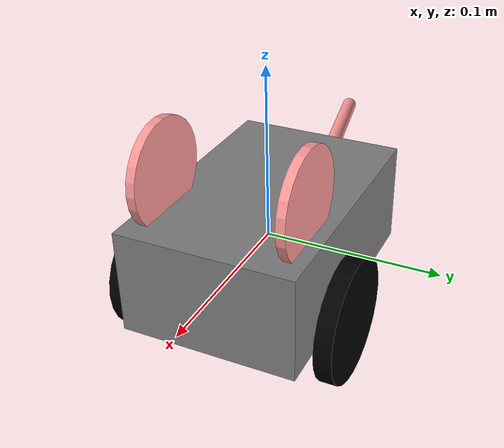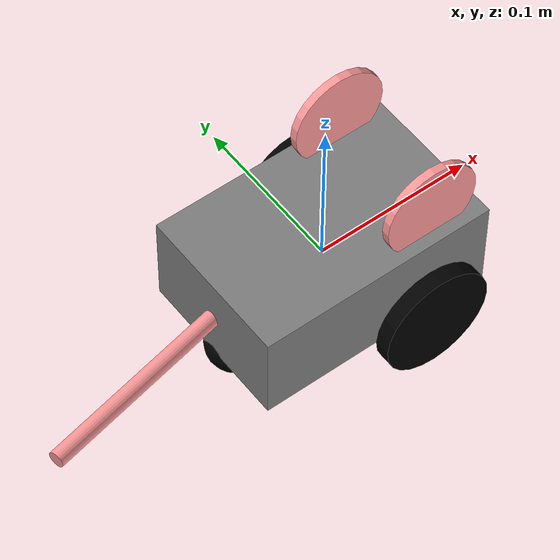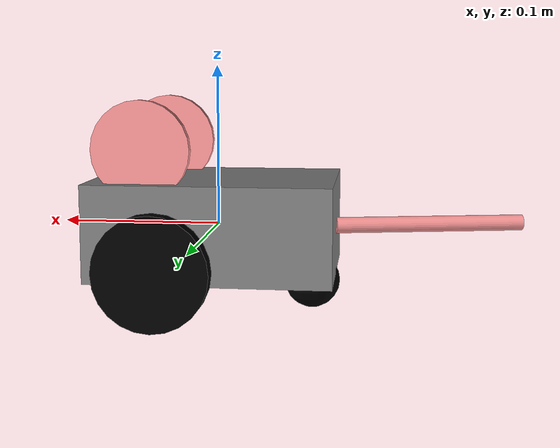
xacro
<?xml version="1.0"?>
<robot name="squeak_mouse" xmlns:xacro="http://www.ros.org/wiki/xacro">

    <xacro:property name="body_len" value="0.15"/>
    <xacro:property name="body_width" value="0.10"/>
    <xacro:property name="body_height" value="0.06"/>
    <xacro:property name="body_mass" value="0.5"/>

    <xacro:property name="wheel_radius" value="0.035"/>
    <xacro:property name="wheel_width" value="0.01"/>
    <xacro:property name="wheel_mass" value="0.1"/>

    <material name="grey">
        <color rgba="0.5 0.5 0.5 1"/>
    </material>
    <material name="pink">
        <color rgba="1 0.6 0.6 1"/> </material>
    <material name="black">
        <color rgba="0 0 0 1"/>
    </material>

    <xacro:macro name="box_inertia" params="m x y z">
        <inertial>
            <mass value="${m}"/>
            <inertia ixx="${m*(y*y+z*z)/12}" ixy="0" ixz="0"
                     iyy="${m*(x*x+z*z)/12}" iyz="0"
                     izz="${m*(x*x+y*y)/12}"/>
        </inertial>
    </xacro:macro>

    <xacro:macro name="cylinder_inertia" params="m r h">
        <inertial>
            <mass value="${m}"/>
            <inertia ixx="${m*(3*r*r+h*h)/12}" ixy="0" ixz="0"
                     iyy="${m*(3*r*r+h*h)/12}" iyz="0"
                     izz="${m*r*r/2}"/>
        </inertial>
    </xacro:macro>

    <xacro:macro name="sphere_inertia" params="m r">
        <inertial>
            <mass value="${m}"/>
            <inertia ixx="${2*m*r*r/5}" ixy="0" ixz="0"
                     iyy="${2*m*r*r/5}" iyz="0"
                     izz="${2*m*r*r/5}"/>
        </inertial>
    </xacro:macro>

    <link name="base_link">
        <visual>
            <geometry><box size="${body_len} ${body_width} ${body_height}"/></geometry>
            <material name="grey"/>
        </visual>
        <collision>
            <geometry><box size="${body_len} ${body_width} ${body_height}"/></geometry>
        </collision>
        <xacro:box_inertia m="${body_mass}" x="${body_len}" y="${body_width}" z="${body_height}"/>
    </link>

    <gazebo reference="base_link">
        <material>Gazebo/Grey</material>
    </gazebo>

    <xacro:macro name="ear" params="prefix y_pos">
        <link name="${prefix}_ear">
            <visual>
                <origin xyz="0 0 0" rpy="1.5707 0 0"/>
                <geometry><cylinder radius="0.03" length="0.005"/></geometry>
                <material name="pink"/>
            </visual>
            <xacro:cylinder_inertia m="0.05" r="0.03" h="0.005"/>
        </link>

        <joint name="${prefix}_ear_joint" type="fixed">
            <parent link="base_link"/>
            <child link="${prefix}_ear"/>
            <origin xyz="0.04 ${y_pos} ${body_height/2 + 0.02}" rpy="0 0 0"/>
        </joint>

        <gazebo reference="${prefix}_ear">
            <material>Gazebo/RedBright</material>
        </gazebo>
    </xacro:macro>

    <xacro:ear prefix="left" y_pos="0.04"/>
    <xacro:ear prefix="right" y_pos="-0.04"/>

    <link name="tail">
        <visual>
            <origin xyz="-0.06 0 0" rpy="0 1.57 0"/> <geometry><cylinder radius="0.005" length="0.12"/></geometry>
            <material name="pink"/>
        </visual>
        <xacro:cylinder_inertia m="0.05" r="0.005" h="0.12"/>
    </link>

    <joint name="tail_joint" type="fixed">
        <parent link="base_link"/>
        <child link="tail"/>
        <origin xyz="-${body_len/2} 0 0" rpy="0 0 0.2"/> </joint>

    <xacro:macro name="wheel" params="prefix y_pos">
        <link name="${prefix}_wheel">
            <visual>
                <origin xyz="0 0 0" rpy="1.5707 0 0"/>
                <geometry><cylinder radius="${wheel_radius}" length="${wheel_width}"/></geometry>
                <material name="black"/>
            </visual>
            <collision>
                <origin xyz="0 0 0" rpy="1.5707 0 0"/>
                <geometry><cylinder radius="${wheel_radius}" length="${wheel_width}"/></geometry>
            </collision>
            <xacro:cylinder_inertia m="${wheel_mass}" r="${wheel_radius}" h="${wheel_width}"/>
        </link>

        <joint name="${prefix}_wheel_joint" type="continuous">
            <parent link="base_link"/>
            <child link="${prefix}_wheel"/>
            <origin xyz="0.03 ${y_pos} -0.02" rpy="0 0 0"/> <axis xyz="0 1 0"/>
        </joint>

        <gazebo reference="${prefix}_wheel">
            <material>Gazebo/Black</material>
        </gazebo>
    </xacro:macro>

    <xacro:wheel prefix="left" y_pos="0.06"/>
    <xacro:wheel prefix="right" y_pos="-0.06"/>

    <link name="caster_wheel">
        <visual>
            <geometry><sphere radius="${wheel_radius/2}"/></geometry>
            <material name="black"/>
        </visual>
        <collision>
            <geometry><sphere radius="${wheel_radius/2}"/></geometry>
        </collision>
        <xacro:sphere_inertia m="0.05" r="${wheel_radius/2}"/>
    </link>

    <joint name="caster_joint" type="fixed">
        <parent link="base_link"/>
        <child link="caster_wheel"/>
        <origin xyz="-0.06 0 -0.035" rpy="0 0 0"/>
    </joint>

    <gazebo reference="caster_wheel">
        <mu1>0.001</mu1>
        <mu2>0.001</mu2>
        <material>Gazebo/Black</material>
    </gazebo>

    <gazebo>
        <plugin name="diff_drive" filename="libgazebo_ros_diff_drive.so">

            <left_joint>left_wheel_joint</left_joint>
            <right_joint>right_wheel_joint</right_joint>
            <wheel_separation>0.12</wheel_separation>
            <wheel_diameter>${wheel_radius * 2}</wheel_diameter>

            <max_wheel_torque>10</max_wheel_torque>
            <max_wheel_acceleration>1.0</max_wheel_acceleration>

            <odometry_frame>odom</odometry_frame>
            <robot_base_frame>base_link</robot_base_frame>
            <publish_odom>true</publish_odom>
            <publish_odom_tf>true</publish_odom_tf>
            <publish_wheel_tf>true</publish_wheel_tf>

        </plugin>
    </gazebo>

</robot>
